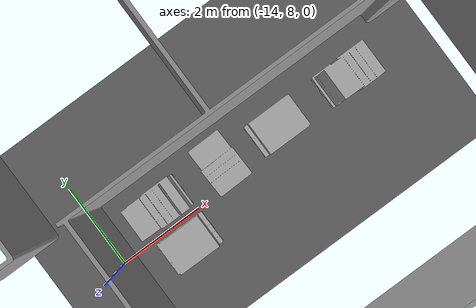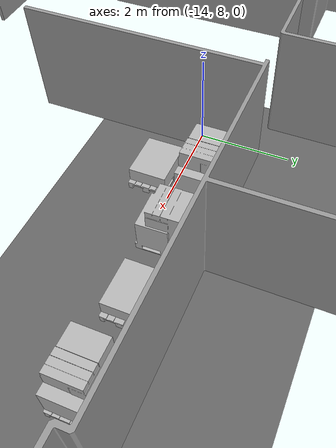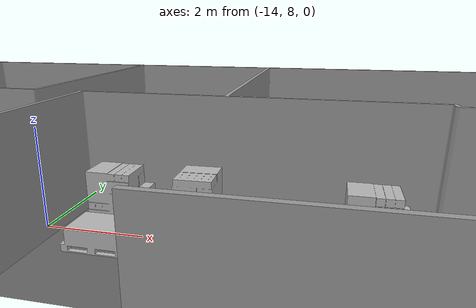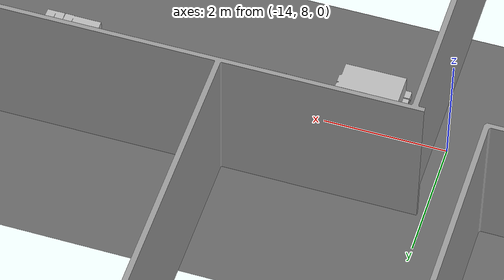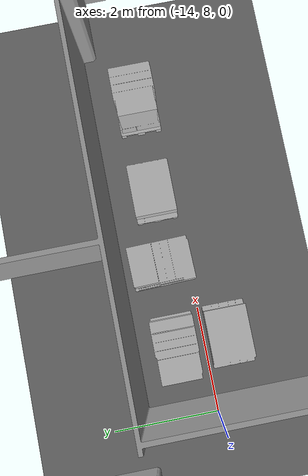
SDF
<?xml version="1.0"?>
<sdf version="1.7">
  <world name="office_environment_1_w_pallets">
    <atmosphere type="adiabatic" />
    <gravity>0 0 -9.8</gravity>
    <magnetic_field>6e-06 2.3e-05 -4.2e-05</magnetic_field>

    <scene>
      <ambient>0.4 0.4 0.4 1</ambient>
      <background>0.7 0.7 0.7 1</background>
      <shadows>false</shadows>
      <grid>true</grid>
      <origin_visual>true</origin_visual>
    </scene>

    <physics name="default_physics" default="true" type="dart">
      <max_step_size>0.01</max_step_size>
      <real_time_update_rate>100</real_time_update_rate>
      <real_time_factor>1</real_time_factor>
      <max_contacts>10</max_contacts>
    </physics>

    <!--
      Load the standard Gazebo world systems used by the maintained worlds in
      this package. This world keeps the same base plugin set as
      `factory_w_pallets.sdf`.
    -->
    <plugin name="gz::sim::systems::Physics" filename="gz-sim-physics-system">
      <engine>
        <filename>gz-physics-dartsim-plugin</filename>
      </engine>
    </plugin>
    <plugin filename="gz-sim-contact-system" name="gz::sim::systems::Contact" />
    <plugin filename="gz-sim-imu-system" name="gz::sim::systems::Imu" />
    <plugin filename="gz-sim-scene-broadcaster-system" name="gz::sim::systems::SceneBroadcaster" />
    <plugin filename="gz-sim-user-commands-system" name="gz::sim::systems::UserCommands" />
    <plugin filename="gz-sim-sensors-system" name="gz::sim::systems::Sensors">
      <render_engine>ogre2</render_engine>
    </plugin>

    <light name="sun" type="directional">
      <cast_shadows>1</cast_shadows>
      <pose>0 0 10 0 -0.5 0</pose>
      <diffuse>0.8 0.8 0.8 1</diffuse>
      <specular>0.2 0.2 0.2 1</specular>
      <attenuation>
        <range>1000</range>
        <constant>0.9</constant>
        <linear>0.01</linear>
        <quadratic>0.001</quadratic>
      </attenuation>
      <direction>-0.5 0.1 -0.9</direction>
    </light>

    <model name="ground_plane">
      <static>true</static>
      <link name="link">
        <visual name="visual">
          <geometry>
            <plane>
              <normal>0 0 1</normal>
              <size>100 100</size>
            </plane>
          </geometry>
          <pose>0 0 0 0 0 0</pose>
          <material>
            <ambient>0.4 0.4 0.4 1</ambient>
            <diffuse>0.4 0.4 0.4 1</diffuse>
            <specular>0.05 0.05 0.05 1</specular>
          </material>
          <cast_shadows>0</cast_shadows>
        </visual>
        <collision name="collision">
          <geometry>
            <plane>
              <normal>0 0 1</normal>
              <size>100 100</size>
            </plane>
          </geometry>
          <pose>0 0 0 0 0 0</pose>
          <surface>
            <friction>
              <ode />
              <torsional>
                <ode />
              </torsional>
            </friction>
            <bounce />
            <contact />
          </surface>
        </collision>
        <pose>0 0 0 0 0 0</pose>
      </link>
      <pose>0 0 0 0 0 0</pose>
    </model>

    <!--
      The office walls are provided by one STL mesh. The same mesh is used for
      both `visual` and `collision` so Gazebo renders and collides against the
      same geometry.
    -->
    <model name="office_environment_1">
      <static>true</static>
      <link name="link">
        <visual name="visual">
          <geometry>
            <mesh>
              <uri>package://ros_gz_tools/meshes/office_environment_1/office_environment_1.stl</uri>
            </mesh>
          </geometry>
          <material>
            <ambient>0.6 0.6 0.6 1</ambient>
            <diffuse>0.6 0.6 0.6 1</diffuse>
          </material>
        </visual>
        <collision name="collision">
          <geometry>
            <mesh>
              <uri>package://ros_gz_tools/meshes/office_environment_1/office_environment_1.stl</uri>
            </mesh>
          </geometry>
        </collision>
      </link>
      <pose relative_to="ground_plane">0 0 0 0 0 0</pose>
    </model>

    <include>
      <uri>model://euro_pallet_w_stacked_boxes</uri>
      <pose relative_to="ground_plane">-12.624345970850529 8.545947400993088 0 0 0 0</pose>
      <name>euro_pallet_w_stacked_boxes_1</name>
    </include>

    <include>
      <uri>model://euro_pallet_w_stacked_boxes</uri>
      <pose relative_to="ground_plane">-11.051199913024902 8.519840240478516 0 0 0 -1.5474915183304312</pose>
      <name>euro_pallet_w_stacked_boxes_2</name>
    </include>

    <include>
      <uri>model://euro_pallet_w_boxes</uri>
      <pose relative_to="ground_plane">-12.583259223510218 7.52204364595089 0 0 0 0</pose>
      <name>euro_pallet_w_boxes_1</name>
    </include>

    <include>
      <uri>model://euro_pallet_w_boxes</uri>
      <pose relative_to="ground_plane">-9.586601643481009 8.427691803739954 0 0 0 0</pose>
      <name>euro_pallet_w_boxes_2</name>
    </include>

    <include>
      <uri>model://euro_pallet_w_stacked_boxes</uri>
      <pose relative_to="ground_plane">-7.788374708250269 8.413746986204199 0 0 0 0</pose>
      <name>euro_pallet_w_stacked_boxes_3</name>
    </include>
  </world>
</sdf>

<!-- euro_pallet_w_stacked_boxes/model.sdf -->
<sdf version="1.7">
    <model name="euro_pallet_w_stacked_boxes" canonical_link="link" placement_frame="link">
        <static>false</static>

        <link name="link">
            <!--
            Avoid self-collision between the five collision geometries
            inside this link. Default is false, but set explicitly
            to document the intention.
            -->
            <self_collide>false</self_collide>

            <visual name="visual">
                <geometry>
                    <mesh>
                        <uri>model://euro_pallet_w_stacked_boxes/meshes/euro_pallet_w_stacked_boxes.dae</uri>
                        <scale>1 1 1</scale>
                    </mesh>
                </geometry>
                <!--
                Link of the mesh is at the center of the bottom face of the pallet.
                -->
                <pose>0 0 0 0 0 0</pose>
            </visual>

            <collision name="pallet_top_collision">
                <geometry>
                    <box>
                        <size>1.20 0.8 0.044</size>
                    </box>
                </geometry>
                <pose>0 0 0.122 0 0 0</pose>
            </collision>

            <collision name="pallet_center_collision">
                <geometry>
                    <box>
                        <size>1.20 0.145 0.10</size>
                    </box>
                </geometry>
                <pose>0 0 0.05 0 0 0</pose>
            </collision>

            <collision name="pallet_left_collision">
                <geometry>
                    <box>
                        <size>1.20 0.10 0.10</size>
                    </box>
                </geometry>
                <pose>0 0.35 0.05 0 0 0</pose>
            </collision>

            <collision name="pallet_right_collision">
                <geometry>
                    <box>
                        <size>1.20 0.10 0.10</size>
                    </box>
                </geometry>
                <pose>0 -0.35 0.05 0 0 0</pose>
            </collision>

            <collision name="boxes_collision">
                <geometry>
                    <box>
                        <size>1.20 0.8 1</size>
                    </box>
                </geometry>
                <!--
                z = euro_pallet.size_z + box.size_z/2 = 0.144 + 1/2 = 0.144 + 0.5 = 0.644 m
                -->
                <pose>0 0 0.644 0 0 0</pose>
            </collision>

            <!-- Mass and inertia for the combined pallet + boxes -->
            <inertial>
                <mass>0.1</mass>
                <inertia>
                    <ixx>0.016239467</ixx>
                    <ixy>0.000000000</ixy>
                    <ixz>0.000000000</ixz>
                    <iyy>0.022906133</iyy>
                    <iyz>0.000000000</iyz>
                    <izz>0.017333333</izz>
                </inertia>
                <!--
                z = whole_body.size_z/2 = (0.144 + 1)/2 = 0.572 m.
                -->
                <pose>0 0 0.572 0 0 0</pose>
            </inertial>
        </link>
    </model>
</sdf>

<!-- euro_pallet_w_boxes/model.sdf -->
<sdf version="1.7">
    <model name="euro_pallet_w_boxes" canonical_link="link" placement_frame="link">
        <static>false</static>

        <link name="link">
            <!--
            Avoid self-collision between the five collision geometries
            inside this link. Default is false, but set explicitly
            to document the intention.
            -->
            <self_collide>false</self_collide>

            <visual name="visual">
                <geometry>
                    <mesh>
                        <uri>
                            model://euro_pallet_w_boxes/meshes/euro_pallet_w_boxes.dae</uri>
                        <scale>1 1 1</scale>
                    </mesh>
                </geometry>
                <!--
                Link of the mesh is at the center of the bottom face of the pallet.
                -->
                <pose>0 0 0 0 0 0</pose>
            </visual>

            <collision name="pallet_top_collision">
                <geometry>
                    <box>
                        <size>1.20 0.8 0.044</size>
                    </box>
                </geometry>
                <pose>0 0 0.122 0 0 0</pose>
            </collision>

            <collision name="pallet_center_collision">
                <geometry>
                    <box>
                        <size>1.20 0.145 0.10</size>
                    </box>
                </geometry>
                <pose>0 0 0.05 0 0 0</pose>
            </collision>

            <collision name="pallet_left_collision">
                <geometry>
                    <box>
                        <size>1.20 0.10 0.10</size>
                    </box>
                </geometry>
                <pose>0 0.35 0.05 0 0 0</pose>
            </collision>

            <collision name="pallet_right_collision">
                <geometry>
                    <box>
                        <size>1.20 0.10 0.10</size>
                    </box>
                </geometry>
                <pose>0 -0.35 0.05 0 0 0</pose>
            </collision>

            <collision name="boxes_collision">
                <geometry>
                    <box>
                        <size>1.20 0.8 0.3</size>
                    </box>
                </geometry>
                <!--
                z = euro_pallet.size_z + box.size_z/2 = 0.144 + 0.3/2 = 0.144 + 0.15 = 0.294 m
                -->
                <pose>0 0 0.644 0 0 0</pose>
            </collision>

            <!-- Mass and inertia for the combined pallet + boxes -->

            <inertial>
                <mass>0.1</mass>
                <inertia>
                    <ixx>0.006976133</ixx>
                    <ixy>0.000000000</ixy>
                    <ixz>0.000000000</ixz>
                    <iyy>0.013642800</iyy>
                    <iyz>0.000000000</iyz>
                    <izz>0.017333333</izz>
                </inertia>
                <!--
                z = whole_body.size_z/2 = (0.144 + 0.3)/2 = 0.222 m.
                -->
                <pose>0 0 0.222 0 0 0</pose>
            </inertial>
        </link>

        <!-- Optional pose-publisher plugin (disabled) -->
    </model>
</sdf>
